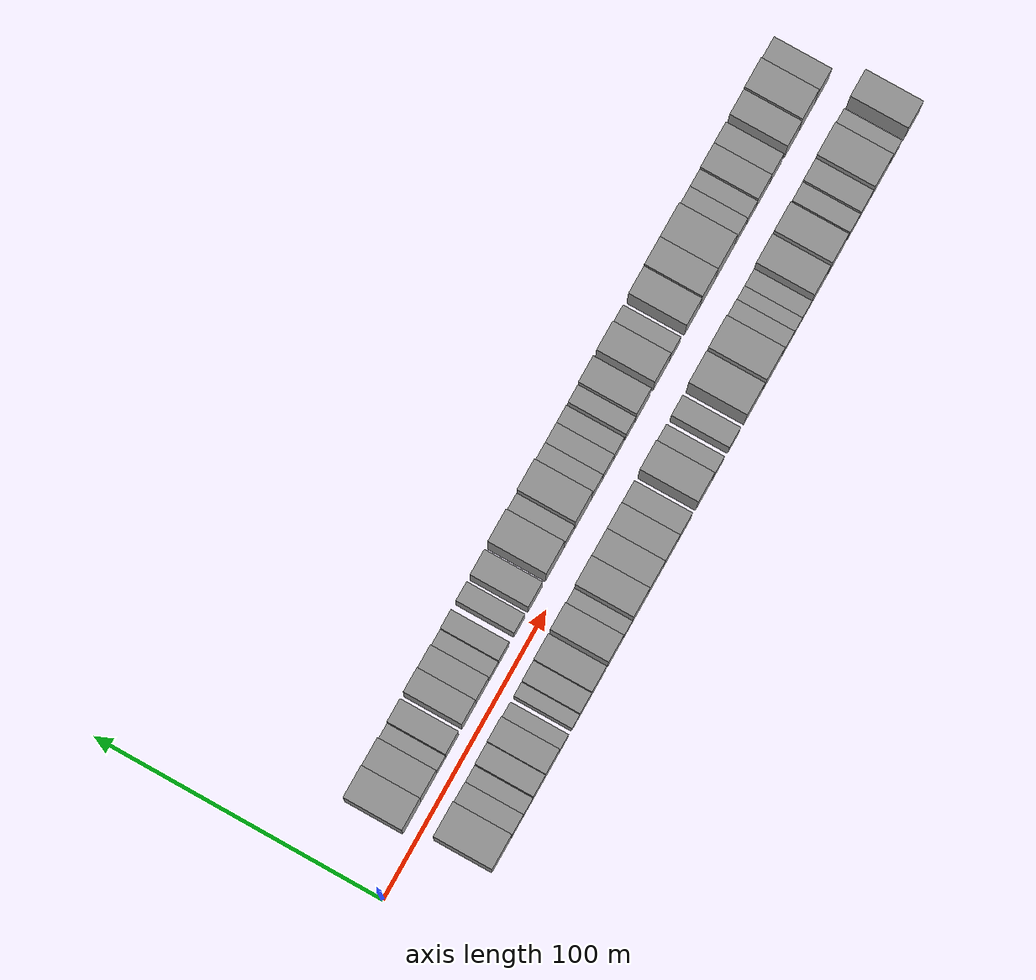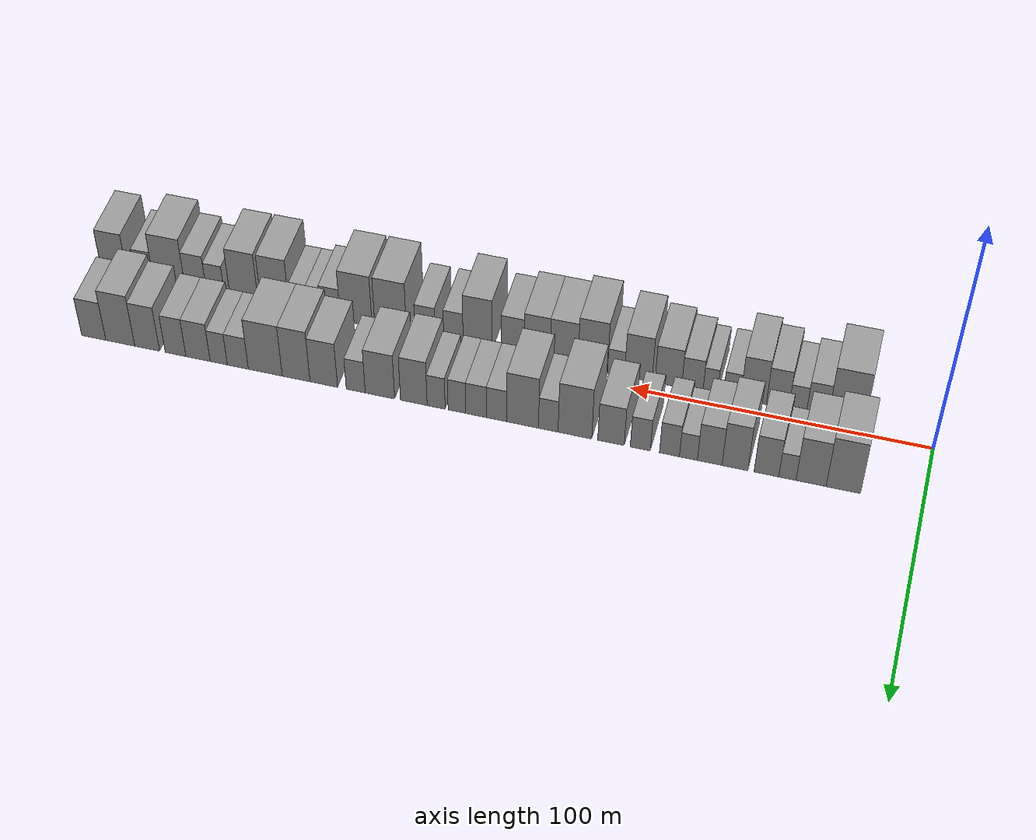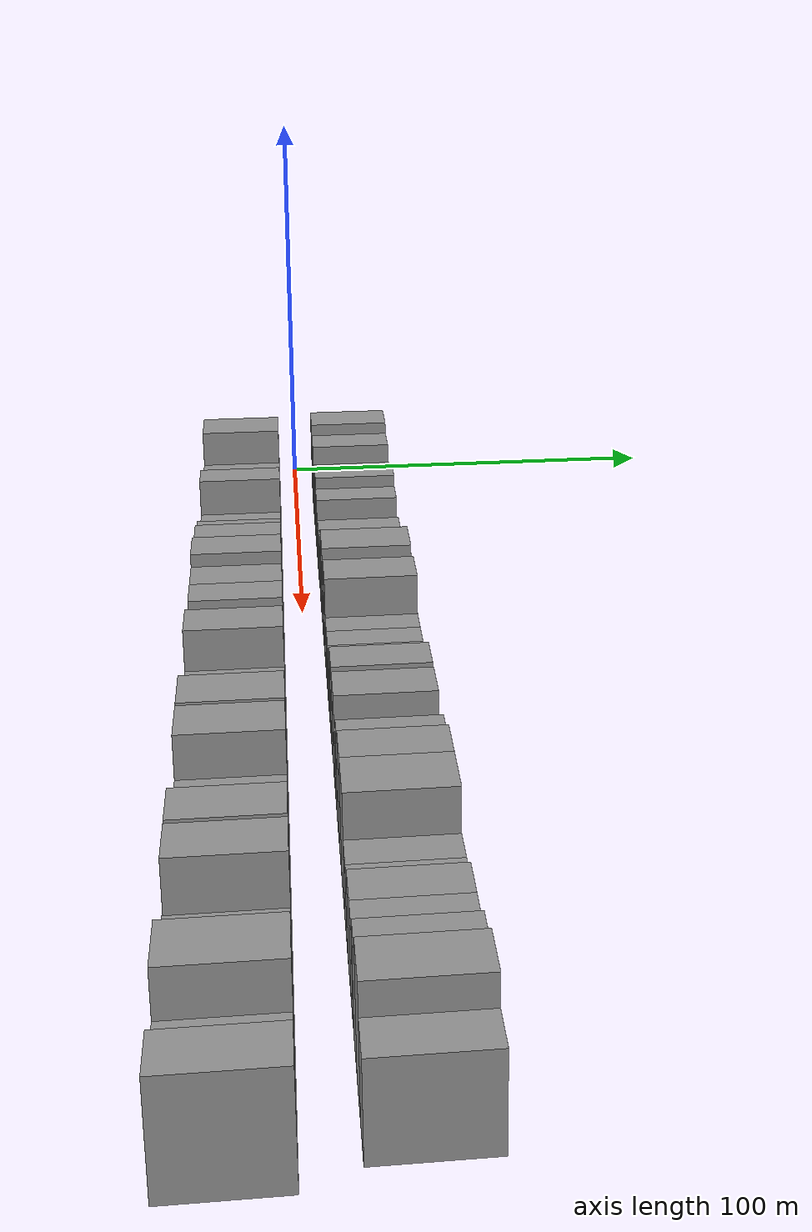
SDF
<sdf version="1.6">
 <world name="default">
  <scene>
   <sky><clouds><speed>12</speed></clouds></sky>
   <ambient>0.4 0.4 0.4 1</ambient>
   <background>0.7 0.7 0.7 1</background>
   <shadows>1</shadows>
  </scene>
  <gravity>0 0 -9.8066</gravity>
  <magnetic_field>6e-06 2.3e-05 -4.2e-05</magnetic_field>
  <physics default="0" name="default_physics" type="ode">
   <ode>
    <solver>
     <type>quick</type>
     <iters>10</iters>
     <sor>1.0</sor>
     <use_dynamic_moi_rescaling>0</use_dynamic_moi_rescaling>
    </solver>
    <constraints>
     <cfm>0</cfm>
     <erp>0.2</erp>
     <contact_max_correcting_vel>100</contact_max_correcting_vel>
     <contact_surface_layer>0.001</contact_surface_layer>
    </constraints>
   </ode>
   <max_step_size>0.004</max_step_size>
   <real_time_factor>1</real_time_factor>
   <real_time_update_rate>250</real_time_update_rate>
  </physics>
  <light name="sun" type="directional">
   <pose>0 0 10 0 0 0</pose>
   <diffuse>0.8 0.8 0.8 1</diffuse>
   <specular>0.2 0.2 0.2 1</specular>
   <attenuation>
    <range>1000</range>
    <constant>0.9</constant>
    <linear>0.01</linear>
    <quadratic>0.001</quadratic>
   </attenuation>
   <direction>-0.5 0.1 -0.9</direction>
  </light>
  <model name="building_1">
   <static>1</static>
   <pose>25.4980 14.5000 0 0.000000 0.000000 1.570796</pose>
   <link name="link">
    <pose>0 0 12.00 0 0 0</pose>
    <collision name="collision"><geometry><box><size>20.0000 10.9961 24.0000</size></box></geometry></collision>
    <visual name="visual">
     <cast_shadows>0</cast_shadows>
     <geometry><box><size>20.0000 10.9961 24.0000</size></box></geometry>
     <material>
      <script>
       <uri>model://grey_wall/materials/scripts</uri>
       <uri>model://grey_wall/materials/textures</uri>
       <name>vrc/grey_wall</name>
      </script>
     </material>
    </visual>
   </link>
  </model>
  <model name="building_2">
   <static>1</static>
   <pose>35.8365 14.5000 0 0.000000 0.000000 1.570796</pose>
   <link name="link">
    <pose>0 0 10.50 0 0 0</pose>
    <collision name="collision"><geometry><box><size>20.0000 9.6809 21.0000</size></box></geometry></collision>
    <visual name="visual">
     <cast_shadows>0</cast_shadows>
     <geometry><box><size>20.0000 9.6809 21.0000</size></box></geometry>
     <material>
      <script>
       <uri>model://grey_wall/materials/scripts</uri>
       <uri>model://grey_wall/materials/textures</uri>
       <name>vrc/grey_wall</name>
      </script>
     </material>
    </visual>
   </link>
  </model>
  <model name="building_3">
   <static>1</static>
   <pose>43.4522 14.5000 0 0.000000 0.000000 1.570796</pose>
   <link name="link">
    <pose>0 0 6.00 0 0 0</pose>
    <collision name="collision"><geometry><box><size>20.0000 5.5503 12.0000</size></box></geometry></collision>
    <visual name="visual">
     <cast_shadows>0</cast_shadows>
     <geometry><box><size>20.0000 5.5503 12.0000</size></box></geometry>
     <material>
      <script>
       <uri>model://grey_wall/materials/scripts</uri>
       <uri>model://grey_wall/materials/textures</uri>
       <name>vrc/grey_wall</name>
      </script>
     </material>
    </visual>
   </link>
  </model>
  <model name="building_4">
   <static>1</static>
   <pose>50.2267 14.5000 0 0.000000 0.000000 1.570796</pose>
   <link name="link">
    <pose>0 0 9.00 0 0 0</pose>
    <collision name="collision"><geometry><box><size>20.0000 7.9987 18.0000</size></box></geometry></collision>
    <visual name="visual">
     <cast_shadows>0</cast_shadows>
     <geometry><box><size>20.0000 7.9987 18.0000</size></box></geometry>
     <material>
      <script>
       <uri>model://grey_wall/materials/scripts</uri>
       <uri>model://grey_wall/materials/textures</uri>
       <name>vrc/grey_wall</name>
      </script>
     </material>
    </visual>
   </link>
  </model>
  <model name="building_5">
   <static>1</static>
   <pose>60.4271 14.5000 0 0.000000 0.000000 1.570796</pose>
   <link name="link">
    <pose>0 0 10.50 0 0 0</pose>
    <collision name="collision"><geometry><box><size>20.0000 8.4021 21.0000</size></box></geometry></collision>
    <visual name="visual">
     <cast_shadows>0</cast_shadows>
     <geometry><box><size>20.0000 8.4021 21.0000</size></box></geometry>
     <material>
      <script>
       <uri>model://grey_wall/materials/scripts</uri>
       <uri>model://grey_wall/materials/textures</uri>
       <name>vrc/grey_wall</name>
      </script>
     </material>
    </visual>
   </link>
  </model>
  <model name="building_6">
   <static>1</static>
   <pose>68.6615 14.5000 0 0.000000 0.000000 1.570796</pose>
   <link name="link">
    <pose>0 0 9.00 0 0 0</pose>
    <collision name="collision"><geometry><box><size>20.0000 8.0667 18.0000</size></box></geometry></collision>
    <visual name="visual">
     <cast_shadows>0</cast_shadows>
     <geometry><box><size>20.0000 8.0667 18.0000</size></box></geometry>
     <material>
      <script>
       <uri>model://grey_wall/materials/scripts</uri>
       <uri>model://grey_wall/materials/textures</uri>
       <name>vrc/grey_wall</name>
      </script>
     </material>
    </visual>
   </link>
  </model>
  <model name="building_7">
   <static>1</static>
   <pose>75.6323 14.5000 0 0.000000 0.000000 1.570796</pose>
   <link name="link">
    <pose>0 0 6.00 0 0 0</pose>
    <collision name="collision"><geometry><box><size>20.0000 5.8749 12.0000</size></box></geometry></collision>
    <visual name="visual">
     <cast_shadows>0</cast_shadows>
     <geometry><box><size>20.0000 5.8749 12.0000</size></box></geometry>
     <material>
      <script>
       <uri>model://grey_wall/materials/scripts</uri>
       <uri>model://grey_wall/materials/textures</uri>
       <name>vrc/grey_wall</name>
      </script>
     </material>
    </visual>
   </link>
  </model>
  <model name="building_8">
   <static>1</static>
   <pose>81.8384 14.5000 0 0.000000 0.000000 1.570796</pose>
   <link name="link">
    <pose>0 0 7.50 0 0 0</pose>
    <collision name="collision"><geometry><box><size>20.0000 6.5374 15.0000</size></box></geometry></collision>
    <visual name="visual">
     <cast_shadows>0</cast_shadows>
     <geometry><box><size>20.0000 6.5374 15.0000</size></box></geometry>
     <material>
      <script>
       <uri>model://grey_wall/materials/scripts</uri>
       <uri>model://grey_wall/materials/textures</uri>
       <name>vrc/grey_wall</name>
      </script>
     </material>
    </visual>
   </link>
  </model>
  <model name="building_9">
   <static>1</static>
   <pose>91.4130 14.5000 0 0.000000 0.000000 1.570796</pose>
   <link name="link">
    <pose>0 0 7.50 0 0 0</pose>
    <collision name="collision"><geometry><box><size>20.0000 6.6117 15.0000</size></box></geometry></collision>
    <visual name="visual">
     <cast_shadows>0</cast_shadows>
     <geometry><box><size>20.0000 6.6117 15.0000</size></box></geometry>
     <material>
      <script>
       <uri>model://grey_wall/materials/scripts</uri>
       <uri>model://grey_wall/materials/textures</uri>
       <name>vrc/grey_wall</name>
      </script>
     </material>
    </visual>
   </link>
  </model>
  <model name="building_10">
   <static>1</static>
   <pose>101.1131 14.5000 0 0.000000 0.000000 1.570796</pose>
   <link name="link">
    <pose>0 0 9.00 0 0 0</pose>
    <collision name="collision"><geometry><box><size>20.0000 8.7886 18.0000</size></box></geometry></collision>
    <visual name="visual">
     <cast_shadows>0</cast_shadows>
     <geometry><box><size>20.0000 8.7886 18.0000</size></box></geometry>
     <material>
      <script>
       <uri>model://grey_wall/materials/scripts</uri>
       <uri>model://grey_wall/materials/textures</uri>
       <name>vrc/grey_wall</name>
      </script>
     </material>
    </visual>
   </link>
  </model>
  <model name="building_11">
   <static>1</static>
   <pose>113.1263 14.5000 0 0.000000 0.000000 1.570796</pose>
   <link name="link">
    <pose>0 0 12.00 0 0 0</pose>
    <collision name="collision"><geometry><box><size>20.0000 11.2377 24.0000</size></box></geometry></collision>
    <visual name="visual">
     <cast_shadows>0</cast_shadows>
     <geometry><box><size>20.0000 11.2377 24.0000</size></box></geometry>
     <material>
      <script>
       <uri>model://grey_wall/materials/scripts</uri>
       <uri>model://grey_wall/materials/textures</uri>
       <name>vrc/grey_wall</name>
      </script>
     </material>
    </visual>
   </link>
  </model>
  <model name="building_12">
   <static>1</static>
   <pose>122.0144 14.5000 0 0.000000 0.000000 1.570796</pose>
   <link name="link">
    <pose>0 0 7.50 0 0 0</pose>
    <collision name="collision"><geometry><box><size>20.0000 6.5384 15.0000</size></box></geometry></collision>
    <visual name="visual">
     <cast_shadows>0</cast_shadows>
     <geometry><box><size>20.0000 6.5384 15.0000</size></box></geometry>
     <material>
      <script>
       <uri>model://grey_wall/materials/scripts</uri>
       <uri>model://grey_wall/materials/textures</uri>
       <name>vrc/grey_wall</name>
      </script>
     </material>
    </visual>
   </link>
  </model>
  <model name="building_13">
   <static>1</static>
   <pose>130.6285 14.5000 0 0.000000 0.000000 1.570796</pose>
   <link name="link">
    <pose>0 0 12.00 0 0 0</pose>
    <collision name="collision"><geometry><box><size>20.0000 10.6898 24.0000</size></box></geometry></collision>
    <visual name="visual">
     <cast_shadows>0</cast_shadows>
     <geometry><box><size>20.0000 10.6898 24.0000</size></box></geometry>
     <material>
      <script>
       <uri>model://grey_wall/materials/scripts</uri>
       <uri>model://grey_wall/materials/textures</uri>
       <name>vrc/grey_wall</name>
      </script>
     </material>
    </visual>
   </link>
  </model>
  <model name="building_14">
   <static>1</static>
   <pose>139.3972 14.5000 0 0.000000 0.000000 1.570796</pose>
   <link name="link">
    <pose>0 0 7.50 0 0 0</pose>
    <collision name="collision"><geometry><box><size>20.0000 6.8477 15.0000</size></box></geometry></collision>
    <visual name="visual">
     <cast_shadows>0</cast_shadows>
     <geometry><box><size>20.0000 6.8477 15.0000</size></box></geometry>
     <material>
      <script>
       <uri>model://grey_wall/materials/scripts</uri>
       <uri>model://grey_wall/materials/textures</uri>
       <name>vrc/grey_wall</name>
      </script>
     </material>
    </visual>
   </link>
  </model>
  <model name="building_15">
   <static>1</static>
   <pose>146.3079 14.5000 0 0.000000 0.000000 1.570796</pose>
   <link name="link">
    <pose>0 0 7.50 0 0 0</pose>
    <collision name="collision"><geometry><box><size>20.0000 6.9737 15.0000</size></box></geometry></collision>
    <visual name="visual">
     <cast_shadows>0</cast_shadows>
     <geometry><box><size>20.0000 6.9737 15.0000</size></box></geometry>
     <material>
      <script>
       <uri>model://grey_wall/materials/scripts</uri>
       <uri>model://grey_wall/materials/textures</uri>
       <name>vrc/grey_wall</name>
      </script>
     </material>
    </visual>
   </link>
  </model>
  <model name="building_16">
   <static>1</static>
   <pose>152.7990 14.5000 0 0.000000 0.000000 1.570796</pose>
   <link name="link">
    <pose>0 0 7.50 0 0 0</pose>
    <collision name="collision"><geometry><box><size>20.0000 6.0084 15.0000</size></box></geometry></collision>
    <visual name="visual">
     <cast_shadows>0</cast_shadows>
     <geometry><box><size>20.0000 6.0084 15.0000</size></box></geometry>
     <material>
      <script>
       <uri>model://grey_wall/materials/scripts</uri>
       <uri>model://grey_wall/materials/textures</uri>
       <name>vrc/grey_wall</name>
      </script>
     </material>
    </visual>
   </link>
  </model>
  <model name="building_17">
   <static>1</static>
   <pose>159.8689 14.5000 0 0.000000 0.000000 1.570796</pose>
   <link name="link">
    <pose>0 0 7.50 0 0 0</pose>
    <collision name="collision"><geometry><box><size>20.0000 6.1314 15.0000</size></box></geometry></collision>
    <visual name="visual">
     <cast_shadows>0</cast_shadows>
     <geometry><box><size>20.0000 6.1314 15.0000</size></box></geometry>
     <material>
      <script>
       <uri>model://grey_wall/materials/scripts</uri>
       <uri>model://grey_wall/materials/textures</uri>
       <name>vrc/grey_wall</name>
      </script>
     </material>
    </visual>
   </link>
  </model>
  <model name="building_18">
   <static>1</static>
   <pose>167.4935 14.5000 0 0.000000 0.000000 1.570796</pose>
   <link name="link">
    <pose>0 0 10.50 0 0 0</pose>
    <collision name="collision"><geometry><box><size>20.0000 9.1178 21.0000</size></box></geometry></collision>
    <visual name="visual">
     <cast_shadows>0</cast_shadows>
     <geometry><box><size>20.0000 9.1178 21.0000</size></box></geometry>
     <material>
      <script>
       <uri>model://grey_wall/materials/scripts</uri>
       <uri>model://grey_wall/materials/textures</uri>
       <name>vrc/grey_wall</name>
      </script>
     </material>
    </visual>
   </link>
  </model>
  <model name="building_19">
   <static>1</static>
   <pose>179.1088 14.5000 0 0.000000 0.000000 1.570796</pose>
   <link name="link">
    <pose>0 0 10.50 0 0 0</pose>
    <collision name="collision"><geometry><box><size>20.0000 10.1128 21.0000</size></box></geometry></collision>
    <visual name="visual">
     <cast_shadows>0</cast_shadows>
     <geometry><box><size>20.0000 10.1128 21.0000</size></box></geometry>
     <material>
      <script>
       <uri>model://grey_wall/materials/scripts</uri>
       <uri>model://grey_wall/materials/textures</uri>
       <name>vrc/grey_wall</name>
      </script>
     </material>
    </visual>
   </link>
  </model>
  <model name="building_20">
   <static>1</static>
   <pose>187.4442 14.5000 0 0.000000 0.000000 1.570796</pose>
   <link name="link">
    <pose>0 0 7.50 0 0 0</pose>
    <collision name="collision"><geometry><box><size>20.0000 6.5579 15.0000</size></box></geometry></collision>
    <visual name="visual">
     <cast_shadows>0</cast_shadows>
     <geometry><box><size>20.0000 6.5579 15.0000</size></box></geometry>
     <material>
      <script>
       <uri>model://grey_wall/materials/scripts</uri>
       <uri>model://grey_wall/materials/textures</uri>
       <name>vrc/grey_wall</name>
      </script>
     </material>
    </visual>
   </link>
  </model>
  <model name="building_21">
   <static>1</static>
   <pose>198.5061 14.5000 0 0.000000 0.000000 1.570796</pose>
   <link name="link">
    <pose>0 0 10.50 0 0 0</pose>
    <collision name="collision"><geometry><box><size>20.0000 9.5661 21.0000</size></box></geometry></collision>
    <visual name="visual">
     <cast_shadows>0</cast_shadows>
     <geometry><box><size>20.0000 9.5661 21.0000</size></box></geometry>
     <material>
      <script>
       <uri>model://grey_wall/materials/scripts</uri>
       <uri>model://grey_wall/materials/textures</uri>
       <name>vrc/grey_wall</name>
      </script>
     </material>
    </visual>
   </link>
  </model>
  <model name="building_22">
   <static>1</static>
   <pose>208.1261 14.5000 0 0.000000 0.000000 1.570796</pose>
   <link name="link">
    <pose>0 0 12.00 0 0 0</pose>
    <collision name="collision"><geometry><box><size>20.0000 9.6738 24.0000</size></box></geometry></collision>
    <visual name="visual">
     <cast_shadows>0</cast_shadows>
     <geometry><box><size>20.0000 9.6738 24.0000</size></box></geometry>
     <material>
      <script>
       <uri>model://grey_wall/materials/scripts</uri>
       <uri>model://grey_wall/materials/textures</uri>
       <name>vrc/grey_wall</name>
      </script>
     </material>
    </visual>
   </link>
  </model>
  <model name="building_23">
   <static>1</static>
   <pose>218.9096 14.5000 0 0.000000 0.000000 1.570796</pose>
   <link name="link">
    <pose>0 0 12.00 0 0 0</pose>
    <collision name="collision"><geometry><box><size>20.0000 11.8933 24.0000</size></box></geometry></collision>
    <visual name="visual">
     <cast_shadows>0</cast_shadows>
     <geometry><box><size>20.0000 11.8933 24.0000</size></box></geometry>
     <material>
      <script>
       <uri>model://grey_wall/materials/scripts</uri>
       <uri>model://grey_wall/materials/textures</uri>
       <name>vrc/grey_wall</name>
      </script>
     </material>
    </visual>
   </link>
  </model>
  <model name="building_24">
   <static>1</static>
   <pose>228.5518 14.5000 0 0.000000 0.000000 1.570796</pose>
   <link name="link">
    <pose>0 0 7.50 0 0 0</pose>
    <collision name="collision"><geometry><box><size>20.0000 7.3909 15.0000</size></box></geometry></collision>
    <visual name="visual">
     <cast_shadows>0</cast_shadows>
     <geometry><box><size>20.0000 7.3909 15.0000</size></box></geometry>
     <material>
      <script>
       <uri>model://grey_wall/materials/scripts</uri>
       <uri>model://grey_wall/materials/textures</uri>
       <name>vrc/grey_wall</name>
      </script>
     </material>
    </visual>
   </link>
  </model>
  <model name="building_25">
   <static>1</static>
   <pose>235.2798 14.5000 0 0.000000 0.000000 1.570796</pose>
   <link name="link">
    <pose>0 0 7.50 0 0 0</pose>
    <collision name="collision"><geometry><box><size>20.0000 6.0652 15.0000</size></box></geometry></collision>
    <visual name="visual">
     <cast_shadows>0</cast_shadows>
     <geometry><box><size>20.0000 6.0652 15.0000</size></box></geometry>
     <material>
      <script>
       <uri>model://grey_wall/materials/scripts</uri>
       <uri>model://grey_wall/materials/textures</uri>
       <name>vrc/grey_wall</name>
      </script>
     </material>
    </visual>
   </link>
  </model>
  <model name="building_26">
   <static>1</static>
   <pose>242.6105 14.5000 0 0.000000 0.000000 1.570796</pose>
   <link name="link">
    <pose>0 0 9.00 0 0 0</pose>
    <collision name="collision"><geometry><box><size>20.0000 8.5960 18.0000</size></box></geometry></collision>
    <visual name="visual">
     <cast_shadows>0</cast_shadows>
     <geometry><box><size>20.0000 8.5960 18.0000</size></box></geometry>
     <material>
      <script>
       <uri>model://grey_wall/materials/scripts</uri>
       <uri>model://grey_wall/materials/textures</uri>
       <name>vrc/grey_wall</name>
      </script>
     </material>
    </visual>
   </link>
  </model>
  <model name="building_27">
   <static>1</static>
   <pose>250.5781 14.5000 0 0.000000 0.000000 1.570796</pose>
   <link name="link">
    <pose>0 0 9.00 0 0 0</pose>
    <collision name="collision"><geometry><box><size>20.0000 7.3392 18.0000</size></box></geometry></collision>
    <visual name="visual">
     <cast_shadows>0</cast_shadows>
     <geometry><box><size>20.0000 7.3392 18.0000</size></box></geometry>
     <material>
      <script>
       <uri>model://grey_wall/materials/scripts</uri>
       <uri>model://grey_wall/materials/textures</uri>
       <name>vrc/grey_wall</name>
      </script>
     </material>
    </visual>
   </link>
  </model>
  <model name="building_28">
   <static>1</static>
   <pose>260.6946 14.5000 0 0.000000 0.000000 1.570796</pose>
   <link name="link">
    <pose>0 0 10.50 0 0 0</pose>
    <collision name="collision"><geometry><box><size>20.0000 8.8939 21.0000</size></box></geometry></collision>
    <visual name="visual">
     <cast_shadows>0</cast_shadows>
     <geometry><box><size>20.0000 8.8939 21.0000</size></box></geometry>
     <material>
      <script>
       <uri>model://grey_wall/materials/scripts</uri>
       <uri>model://grey_wall/materials/textures</uri>
       <name>vrc/grey_wall</name>
      </script>
     </material>
    </visual>
   </link>
  </model>
  <model name="building_29">
   <static>1</static>
   <pose>270.3344 14.5000 0 0.000000 0.000000 1.570796</pose>
   <link name="link">
    <pose>0 0 12.00 0 0 0</pose>
    <collision name="collision"><geometry><box><size>20.0000 10.3856 24.0000</size></box></geometry></collision>
    <visual name="visual">
     <cast_shadows>0</cast_shadows>
     <geometry><box><size>20.0000 10.3856 24.0000</size></box></geometry>
     <material>
      <script>
       <uri>model://grey_wall/materials/scripts</uri>
       <uri>model://grey_wall/materials/textures</uri>
       <name>vrc/grey_wall</name>
      </script>
     </material>
    </visual>
   </link>
  </model>
  <model name="building_30">
   <static>1</static>
   <pose>279.8610 14.5000 0 0.000000 0.000000 1.570796</pose>
   <link name="link">
    <pose>0 0 9.00 0 0 0</pose>
    <collision name="collision"><geometry><box><size>20.0000 8.6677 18.0000</size></box></geometry></collision>
    <visual name="visual">
     <cast_shadows>0</cast_shadows>
     <geometry><box><size>20.0000 8.6677 18.0000</size></box></geometry>
     <material>
      <script>
       <uri>model://grey_wall/materials/scripts</uri>
       <uri>model://grey_wall/materials/textures</uri>
       <name>vrc/grey_wall</name>
      </script>
     </material>
    </visual>
   </link>
  </model>
  <model name="building_31">
   <static>1</static>
   <pose>28.9906 -14.5000 0 0.000000 0.000000 1.570796</pose>
   <link name="link">
    <pose>0 0 12.00 0 0 0</pose>
    <collision name="collision"><geometry><box><size>20.0000 11.9812 24.0000</size></box></geometry></collision>
    <visual name="visual">
     <cast_shadows>0</cast_shadows>
     <geometry><box><size>20.0000 11.9812 24.0000</size></box></geometry>
     <material>
      <script>
       <uri>model://grey_wall/materials/scripts</uri>
       <uri>model://grey_wall/materials/textures</uri>
       <name>vrc/grey_wall</name>
      </script>
     </material>
    </visual>
   </link>
  </model>
  <model name="building_32">
   <static>1</static>
   <pose>38.6062 -14.5000 0 0.000000 0.000000 1.570796</pose>
   <link name="link">
    <pose>0 0 7.50 0 0 0</pose>
    <collision name="collision"><geometry><box><size>20.0000 7.2500 15.0000</size></box></geometry></collision>
    <visual name="visual">
     <cast_shadows>0</cast_shadows>
     <geometry><box><size>20.0000 7.2500 15.0000</size></box></geometry>
     <material>
      <script>
       <uri>model://grey_wall/materials/scripts</uri>
       <uri>model://grey_wall/materials/textures</uri>
       <name>vrc/grey_wall</name>
      </script>
     </material>
    </visual>
   </link>
  </model>
  <model name="building_33">
   <static>1</static>
   <pose>45.1593 -14.5000 0 0.000000 0.000000 1.570796</pose>
   <link name="link">
    <pose>0 0 6.00 0 0 0</pose>
    <collision name="collision"><geometry><box><size>20.0000 5.8562 12.0000</size></box></geometry></collision>
    <visual name="visual">
     <cast_shadows>0</cast_shadows>
     <geometry><box><size>20.0000 5.8562 12.0000</size></box></geometry>
     <material>
      <script>
       <uri>model://grey_wall/materials/scripts</uri>
       <uri>model://grey_wall/materials/textures</uri>
       <name>vrc/grey_wall</name>
      </script>
     </material>
    </visual>
   </link>
  </model>
  <model name="building_34">
   <static>1</static>
   <pose>51.8335 -14.5000 0 0.000000 0.000000 1.570796</pose>
   <link name="link">
    <pose>0 0 9.00 0 0 0</pose>
    <collision name="collision"><geometry><box><size>20.0000 7.4922 18.0000</size></box></geometry></collision>
    <visual name="visual">
     <cast_shadows>0</cast_shadows>
     <geometry><box><size>20.0000 7.4922 18.0000</size></box></geometry>
     <material>
      <script>
       <uri>model://grey_wall/materials/scripts</uri>
       <uri>model://grey_wall/materials/textures</uri>
       <name>vrc/grey_wall</name>
      </script>
     </material>
    </visual>
   </link>
  </model>
  <model name="building_35">
   <static>1</static>
   <pose>59.8682 -14.5000 0 0.000000 0.000000 1.570796</pose>
   <link name="link">
    <pose>0 0 10.50 0 0 0</pose>
    <collision name="collision"><geometry><box><size>20.0000 8.5772 21.0000</size></box></geometry></collision>
    <visual name="visual">
     <cast_shadows>0</cast_shadows>
     <geometry><box><size>20.0000 8.5772 21.0000</size></box></geometry>
     <material>
      <script>
       <uri>model://grey_wall/materials/scripts</uri>
       <uri>model://grey_wall/materials/textures</uri>
       <name>vrc/grey_wall</name>
      </script>
     </material>
    </visual>
   </link>
  </model>
  <model name="building_36">
   <static>1</static>
   <pose>67.0122 -14.5000 0 0.000000 0.000000 1.570796</pose>
   <link name="link">
    <pose>0 0 6.00 0 0 0</pose>
    <collision name="collision"><geometry><box><size>20.0000 5.7107 12.0000</size></box></geometry></collision>
    <visual name="visual">
     <cast_shadows>0</cast_shadows>
     <geometry><box><size>20.0000 5.7107 12.0000</size></box></geometry>
     <material>
      <script>
       <uri>model://grey_wall/materials/scripts</uri>
       <uri>model://grey_wall/materials/textures</uri>
       <name>vrc/grey_wall</name>
      </script>
     </material>
    </visual>
   </link>
  </model>
  <model name="building_37">
   <static>1</static>
   <pose>74.2917 -14.5000 0 0.000000 0.000000 1.570796</pose>
   <link name="link">
    <pose>0 0 6.00 0 0 0</pose>
    <collision name="collision"><geometry><box><size>20.0000 4.8484 12.0000</size></box></geometry></collision>
    <visual name="visual">
     <cast_shadows>0</cast_shadows>
     <geometry><box><size>20.0000 4.8484 12.0000</size></box></geometry>
     <material>
      <script>
       <uri>model://grey_wall/materials/scripts</uri>
       <uri>model://grey_wall/materials/textures</uri>
       <name>vrc/grey_wall</name>
      </script>
     </material>
    </visual>
   </link>
  </model>
  <model name="building_38">
   <static>1</static>
   <pose>80.3015 -14.5000 0 0.000000 0.000000 1.570796</pose>
   <link name="link">
    <pose>0 0 7.50 0 0 0</pose>
    <collision name="collision"><geometry><box><size>20.0000 7.1713 15.0000</size></box></geometry></collision>
    <visual name="visual">
     <cast_shadows>0</cast_shadows>
     <geometry><box><size>20.0000 7.1713 15.0000</size></box></geometry>
     <material>
      <script>
       <uri>model://grey_wall/materials/scripts</uri>
       <uri>model://grey_wall/materials/textures</uri>
       <name>vrc/grey_wall</name>
      </script>
     </material>
    </visual>
   </link>
  </model>
  <model name="building_39">
   <static>1</static>
   <pose>88.3857 -14.5000 0 0.000000 0.000000 1.570796</pose>
   <link name="link">
    <pose>0 0 9.00 0 0 0</pose>
    <collision name="collision"><geometry><box><size>20.0000 8.9970 18.0000</size></box></geometry></collision>
    <visual name="visual">
     <cast_shadows>0</cast_shadows>
     <geometry><box><size>20.0000 8.9970 18.0000</size></box></geometry>
     <material>
      <script>
       <uri>model://grey_wall/materials/scripts</uri>
       <uri>model://grey_wall/materials/textures</uri>
       <name>vrc/grey_wall</name>
      </script>
     </material>
    </visual>
   </link>
  </model>
  <model name="building_40">
   <static>1</static>
   <pose>98.5469 -14.5000 0 0.000000 0.000000 1.570796</pose>
   <link name="link">
    <pose>0 0 10.50 0 0 0</pose>
    <collision name="collision"><geometry><box><size>20.0000 9.3254 21.0000</size></box></geometry></collision>
    <visual name="visual">
     <cast_shadows>0</cast_shadows>
     <geometry><box><size>20.0000 9.3254 21.0000</size></box></geometry>
     <material>
      <script>
       <uri>model://grey_wall/materials/scripts</uri>
       <uri>model://grey_wall/materials/textures</uri>
       <name>vrc/grey_wall</name>
      </script>
     </material>
    </visual>
   </link>
  </model>
  <model name="building_41">
   <static>1</static>
   <pose>106.1159 -14.5000 0 0.000000 0.000000 1.570796</pose>
   <link name="link">
    <pose>0 0 6.00 0 0 0</pose>
    <collision name="collision"><geometry><box><size>20.0000 5.8125 12.0000</size></box></geometry></collision>
    <visual name="visual">
     <cast_shadows>0</cast_shadows>
     <geometry><box><size>20.0000 5.8125 12.0000</size></box></geometry>
     <material>
      <script>
       <uri>model://grey_wall/materials/scripts</uri>
       <uri>model://grey_wall/materials/textures</uri>
       <name>vrc/grey_wall</name>
      </script>
     </material>
    </visual>
   </link>
  </model>
  <model name="building_42">
   <static>1</static>
   <pose>114.0530 -14.5000 0 0.000000 0.000000 1.570796</pose>
   <link name="link">
    <pose>0 0 12.00 0 0 0</pose>
    <collision name="collision"><geometry><box><size>20.0000 10.0618 24.0000</size></box></geometry></collision>
    <visual name="visual">
     <cast_shadows>0</cast_shadows>
     <geometry><box><size>20.0000 10.0618 24.0000</size></box></geometry>
     <material>
      <script>
       <uri>model://grey_wall/materials/scripts</uri>
       <uri>model://grey_wall/materials/textures</uri>
       <name>vrc/grey_wall</name>
      </script>
     </material>
    </visual>
   </link>
  </model>
  <model name="building_43">
   <static>1</static>
   <pose>123.8946 -14.5000 0 0.000000 0.000000 1.570796</pose>
   <link name="link">
    <pose>0 0 10.50 0 0 0</pose>
    <collision name="collision"><geometry><box><size>20.0000 9.6212 21.0000</size></box></geometry></collision>
    <visual name="visual">
     <cast_shadows>0</cast_shadows>
     <geometry><box><size>20.0000 9.6212 21.0000</size></box></geometry>
     <material>
      <script>
       <uri>model://grey_wall/materials/scripts</uri>
       <uri>model://grey_wall/materials/textures</uri>
       <name>vrc/grey_wall</name>
      </script>
     </material>
    </visual>
   </link>
  </model>
  <model name="building_44">
   <static>1</static>
   <pose>133.1848 -14.5000 0 0.000000 0.000000 1.570796</pose>
   <link name="link">
    <pose>0 0 10.50 0 0 0</pose>
    <collision name="collision"><geometry><box><size>20.0000 8.9591 21.0000</size></box></geometry></collision>
    <visual name="visual">
     <cast_shadows>0</cast_shadows>
     <geometry><box><size>20.0000 8.9591 21.0000</size></box></geometry>
     <material>
      <script>
       <uri>model://grey_wall/materials/scripts</uri>
       <uri>model://grey_wall/materials/textures</uri>
       <name>vrc/grey_wall</name>
      </script>
     </material>
    </visual>
   </link>
  </model>
  <model name="building_45">
   <static>1</static>
   <pose>141.6259 -14.5000 0 0.000000 0.000000 1.570796</pose>
   <link name="link">
    <pose>0 0 9.00 0 0 0</pose>
    <collision name="collision"><geometry><box><size>20.0000 7.9231 18.0000</size></box></geometry></collision>
    <visual name="visual">
     <cast_shadows>0</cast_shadows>
     <geometry><box><size>20.0000 7.9231 18.0000</size></box></geometry>
     <material>
      <script>
       <uri>model://grey_wall/materials/scripts</uri>
       <uri>model://grey_wall/materials/textures</uri>
       <name>vrc/grey_wall</name>
      </script>
     </material>
    </visual>
   </link>
  </model>
  <model name="building_46">
   <static>1</static>
   <pose>153.6640 -14.5000 0 0.000000 0.000000 1.570796</pose>
   <link name="link">
    <pose>0 0 12.00 0 0 0</pose>
    <collision name="collision"><geometry><box><size>20.0000 10.1531 24.0000</size></box></geometry></collision>
    <visual name="visual">
     <cast_shadows>0</cast_shadows>
     <geometry><box><size>20.0000 10.1531 24.0000</size></box></geometry>
     <material>
      <script>
       <uri>model://grey_wall/materials/scripts</uri>
       <uri>model://grey_wall/materials/textures</uri>
       <name>vrc/grey_wall</name>
      </script>
     </material>
    </visual>
   </link>
  </model>
  <model name="building_47">
   <static>1</static>
   <pose>162.1200 -14.5000 0 0.000000 0.000000 1.570796</pose>
   <link name="link">
    <pose>0 0 7.50 0 0 0</pose>
    <collision name="collision"><geometry><box><size>20.0000 6.7589 15.0000</size></box></geometry></collision>
    <visual name="visual">
     <cast_shadows>0</cast_shadows>
     <geometry><box><size>20.0000 6.7589 15.0000</size></box></geometry>
     <material>
      <script>
       <uri>model://grey_wall/materials/scripts</uri>
       <uri>model://grey_wall/materials/textures</uri>
       <name>vrc/grey_wall</name>
      </script>
     </material>
    </visual>
   </link>
  </model>
  <model name="building_48">
   <static>1</static>
   <pose>172.0399 -14.5000 0 0.000000 0.000000 1.570796</pose>
   <link name="link">
    <pose>0 0 7.50 0 0 0</pose>
    <collision name="collision"><geometry><box><size>20.0000 7.0809 15.0000</size></box></geometry></collision>
    <visual name="visual">
     <cast_shadows>0</cast_shadows>
     <geometry><box><size>20.0000 7.0809 15.0000</size></box></geometry>
     <material>
      <script>
       <uri>model://grey_wall/materials/scripts</uri>
       <uri>model://grey_wall/materials/textures</uri>
       <name>vrc/grey_wall</name>
      </script>
     </material>
    </visual>
   </link>
  </model>
  <model name="building_49">
   <static>1</static>
   <pose>184.1553 -14.5000 0 0.000000 0.000000 1.570796</pose>
   <link name="link">
    <pose>0 0 12.00 0 0 0</pose>
    <collision name="collision"><geometry><box><size>20.0000 11.1499 24.0000</size></box></geometry></collision>
    <visual name="visual">
     <cast_shadows>0</cast_shadows>
     <geometry><box><size>20.0000 11.1499 24.0000</size></box></geometry>
     <material>
      <script>
       <uri>model://grey_wall/materials/scripts</uri>
       <uri>model://grey_wall/materials/textures</uri>
       <name>vrc/grey_wall</name>
      </script>
     </material>
    </visual>
   </link>
  </model>
  <model name="building_50">
   <static>1</static>
   <pose>196.3559 -14.5000 0 0.000000 0.000000 1.570796</pose>
   <link name="link">
    <pose>0 0 12.00 0 0 0</pose>
    <collision name="collision"><geometry><box><size>20.0000 11.2513 24.0000</size></box></geometry></collision>
    <visual name="visual">
     <cast_shadows>0</cast_shadows>
     <geometry><box><size>20.0000 11.2513 24.0000</size></box></geometry>
     <material>
      <script>
       <uri>model://grey_wall/materials/scripts</uri>
       <uri>model://grey_wall/materials/textures</uri>
       <name>vrc/grey_wall</name>
      </script>
     </material>
    </visual>
   </link>
  </model>
  <model name="building_51">
   <static>1</static>
   <pose>205.4983 -14.5000 0 0.000000 0.000000 1.570796</pose>
   <link name="link">
    <pose>0 0 7.50 0 0 0</pose>
    <collision name="collision"><geometry><box><size>20.0000 7.0336 15.0000</size></box></geometry></collision>
    <visual name="visual">
     <cast_shadows>0</cast_shadows>
     <geometry><box><size>20.0000 7.0336 15.0000</size></box></geometry>
     <material>
      <script>
       <uri>model://grey_wall/materials/scripts</uri>
       <uri>model://grey_wall/materials/textures</uri>
       <name>vrc/grey_wall</name>
      </script>
     </material>
    </visual>
   </link>
  </model>
  <model name="building_52">
   <static>1</static>
   <pose>211.6192 -14.5000 0 0.000000 0.000000 1.570796</pose>
   <link name="link">
    <pose>0 0 6.00 0 0 0</pose>
    <collision name="collision"><geometry><box><size>20.0000 5.2082 12.0000</size></box></geometry></collision>
    <visual name="visual">
     <cast_shadows>0</cast_shadows>
     <geometry><box><size>20.0000 5.2082 12.0000</size></box></geometry>
     <material>
      <script>
       <uri>model://grey_wall/materials/scripts</uri>
       <uri>model://grey_wall/materials/textures</uri>
       <name>vrc/grey_wall</name>
      </script>
     </material>
    </visual>
   </link>
  </model>
  <model name="building_53">
   <static>1</static>
   <pose>217.1799 -14.5000 0 0.000000 0.000000 1.570796</pose>
   <link name="link">
    <pose>0 0 6.00 0 0 0</pose>
    <collision name="collision"><geometry><box><size>20.0000 5.9132 12.0000</size></box></geometry></collision>
    <visual name="visual">
     <cast_shadows>0</cast_shadows>
     <geometry><box><size>20.0000 5.9132 12.0000</size></box></geometry>
     <material>
      <script>
       <uri>model://grey_wall/materials/scripts</uri>
       <uri>model://grey_wall/materials/textures</uri>
       <name>vrc/grey_wall</name>
      </script>
     </material>
    </visual>
   </link>
  </model>
  <model name="building_54">
   <static>1</static>
   <pose>225.2104 -14.5000 0 0.000000 0.000000 1.570796</pose>
   <link name="link">
    <pose>0 0 12.00 0 0 0</pose>
    <collision name="collision"><geometry><box><size>20.0000 10.1478 24.0000</size></box></geometry></collision>
    <visual name="visual">
     <cast_shadows>0</cast_shadows>
     <geometry><box><size>20.0000 10.1478 24.0000</size></box></geometry>
     <material>
      <script>
       <uri>model://grey_wall/materials/scripts</uri>
       <uri>model://grey_wall/materials/textures</uri>
       <name>vrc/grey_wall</name>
      </script>
     </material>
    </visual>
   </link>
  </model>
  <model name="building_55">
   <static>1</static>
   <pose>236.3789 -14.5000 0 0.000000 0.000000 1.570796</pose>
   <link name="link">
    <pose>0 0 12.00 0 0 0</pose>
    <collision name="collision"><geometry><box><size>20.0000 10.1893 24.0000</size></box></geometry></collision>
    <visual name="visual">
     <cast_shadows>0</cast_shadows>
     <geometry><box><size>20.0000 10.1893 24.0000</size></box></geometry>
     <material>
      <script>
       <uri>model://grey_wall/materials/scripts</uri>
       <uri>model://grey_wall/materials/textures</uri>
       <name>vrc/grey_wall</name>
      </script>
     </material>
    </visual>
   </link>
  </model>
  <model name="building_56">
   <static>1</static>
   <pose>246.7612 -14.5000 0 0.000000 0.000000 1.570796</pose>
   <link name="link">
    <pose>0 0 7.50 0 0 0</pose>
    <collision name="collision"><geometry><box><size>20.0000 6.5752 15.0000</size></box></geometry></collision>
    <visual name="visual">
     <cast_shadows>0</cast_shadows>
     <geometry><box><size>20.0000 6.5752 15.0000</size></box></geometry>
     <material>
      <script>
       <uri>model://grey_wall/materials/scripts</uri>
       <uri>model://grey_wall/materials/textures</uri>
       <name>vrc/grey_wall</name>
      </script>
     </material>
    </visual>
   </link>
  </model>
  <model name="building_57">
   <static>1</static>
   <pose>253.9238 -14.5000 0 0.000000 0.000000 1.570796</pose>
   <link name="link">
    <pose>0 0 9.00 0 0 0</pose>
    <collision name="collision"><geometry><box><size>20.0000 7.7500 18.0000</size></box></geometry></collision>
    <visual name="visual">
     <cast_shadows>0</cast_shadows>
     <geometry><box><size>20.0000 7.7500 18.0000</size></box></geometry>
     <material>
      <script>
       <uri>model://grey_wall/materials/scripts</uri>
       <uri>model://grey_wall/materials/textures</uri>
       <name>vrc/grey_wall</name>
      </script>
     </material>
    </visual>
   </link>
  </model>
  <model name="building_58">
   <static>1</static>
   <pose>263.5235 -14.5000 0 0.000000 0.000000 1.570796</pose>
   <link name="link">
    <pose>0 0 12.00 0 0 0</pose>
    <collision name="collision"><geometry><box><size>20.0000 11.4494 24.0000</size></box></geometry></collision>
    <visual name="visual">
     <cast_shadows>0</cast_shadows>
     <geometry><box><size>20.0000 11.4494 24.0000</size></box></geometry>
     <material>
      <script>
       <uri>model://grey_wall/materials/scripts</uri>
       <uri>model://grey_wall/materials/textures</uri>
       <name>vrc/grey_wall</name>
      </script>
     </material>
    </visual>
   </link>
  </model>
  <model name="building_59">
   <static>1</static>
   <pose>272.5755 -14.5000 0 0.000000 0.000000 1.570796</pose>
   <link name="link">
    <pose>0 0 7.50 0 0 0</pose>
    <collision name="collision"><geometry><box><size>20.0000 6.6547 15.0000</size></box></geometry></collision>
    <visual name="visual">
     <cast_shadows>0</cast_shadows>
     <geometry><box><size>20.0000 6.6547 15.0000</size></box></geometry>
     <material>
      <script>
       <uri>model://grey_wall/materials/scripts</uri>
       <uri>model://grey_wall/materials/textures</uri>
       <name>vrc/grey_wall</name>
      </script>
     </material>
    </visual>
   </link>
  </model>
  <model name="building_60">
   <static>1</static>
   <pose>283.6511 -14.5000 0 0.000000 0.000000 1.570796</pose>
   <link name="link">
    <pose>0 0 10.50 0 0 0</pose>
    <collision name="collision"><geometry><box><size>20.0000 9.4964 21.0000</size></box></geometry></collision>
    <visual name="visual">
     <cast_shadows>0</cast_shadows>
     <geometry><box><size>20.0000 9.4964 21.0000</size></box></geometry>
     <material>
      <script>
       <uri>model://grey_wall/materials/scripts</uri>
       <uri>model://grey_wall/materials/textures</uri>
       <name>vrc/grey_wall</name>
      </script>
     </material>
    </visual>
   </link>
  </model>
 </world>
</sdf>
